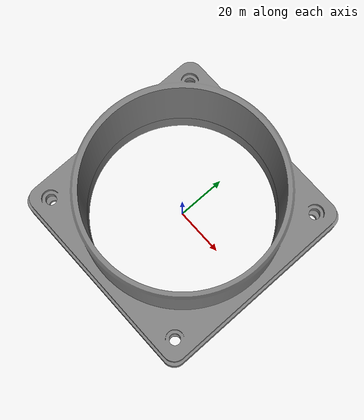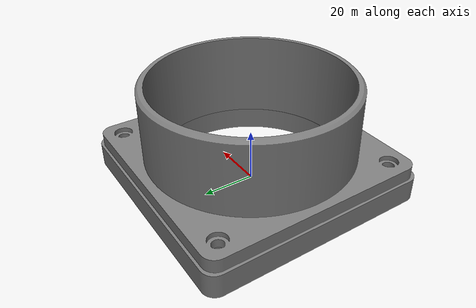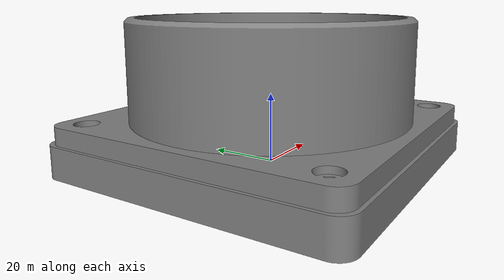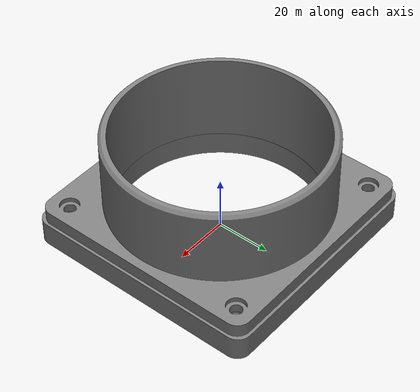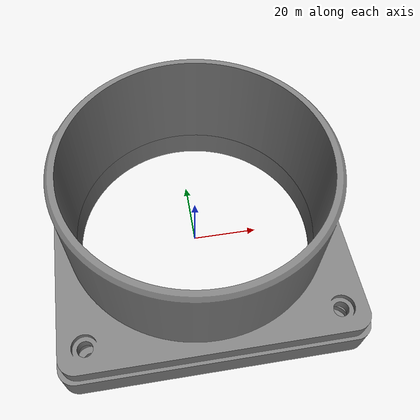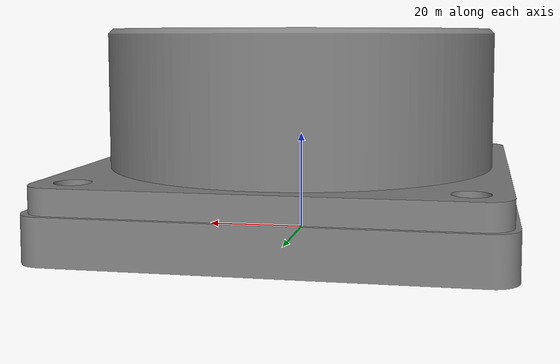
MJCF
<?xml version='1.0' encoding='utf-8'?>
<mujoco model="fan_with_screen">
  <compiler angle="degree" coordinate="local" />
  <asset>
    <mesh name="screen_plate_mesh" file="../../../models/outlet_magnetic_screen_plate_8025/outputs/outlet_magnetic_screen_plate_8025.stl" />
    <mesh name="duct_adapter_mesh" file="../../../models/fan_duct_adapter_8025/outputs/fan_duct_adapter_8025.stl" />
  </asset>
  <worldbody>
    <body name="screen_plate" pos="0 0 0" euler="0 0 0">
      <geom name="screen_plate_geom" type="mesh" mesh="screen_plate_mesh" />
    </body>
    <body name="duct_adapter" pos="0 0 9" euler="0 0 0">
      <geom name="duct_adapter_geom" type="mesh" mesh="duct_adapter_mesh" />
    </body>
  </worldbody>
</mujoco>
